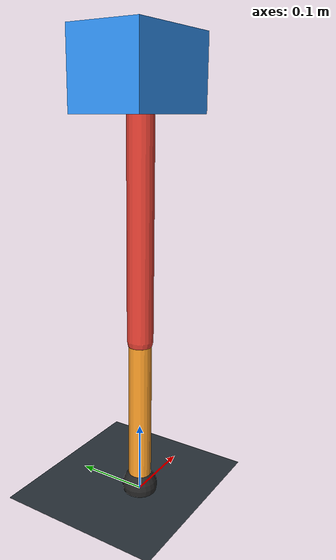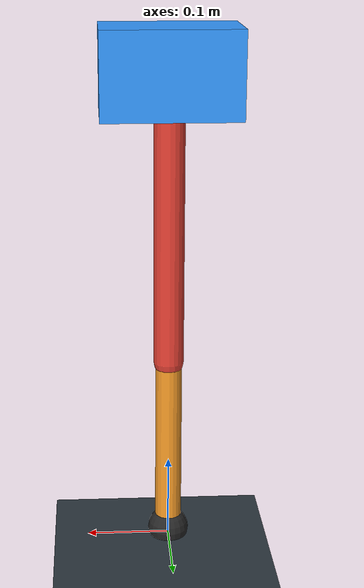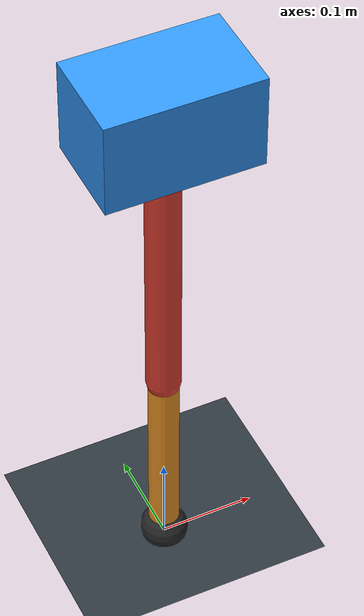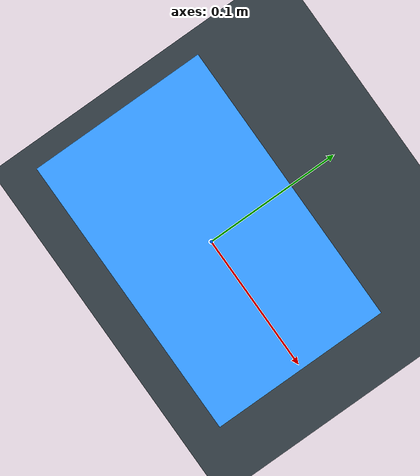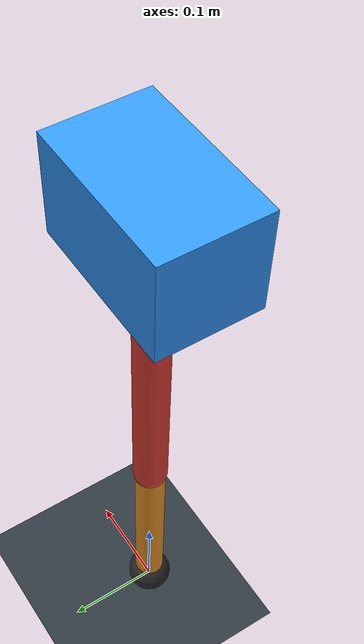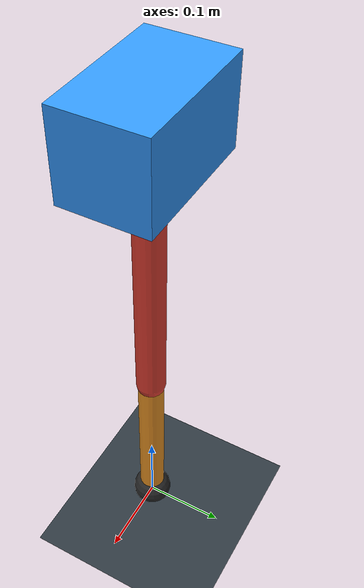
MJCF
<mujoco model="single_axis_two_bar">
  <compiler angle="radian" inertiafromgeom="true"/>
  <option timestep="0.001" integrator="implicitfast" gravity="0 0 -9.81"/>
  <default>
    <joint damping="0.08"/>
    <geom friction="1.2 0.01 0.0001" condim="3"/>
  </default>
  <worldbody>
    <geom name="floor" type="plane" size="5 5 0.1" rgba="0.18 0.22 0.25 1"/>
    <body name="carriage" pos="0 0 0.578345211426328">
      <joint name="pole_slide" type="slide" axis="0 0 1"/>
      <geom name="payload" type="box" size="0.08 0.05 0.05" mass="2.789008031708611" rgba="0.2 0.6 1 1"/>
      <body name="thigh" pos="0 0 0">
        <joint name="hip" type="hinge" axis="0 1 0"/>
        <geom name="thigh_link" type="capsule" fromto="0 0 0 0 0 -0.3481156367507169" size="0.018" mass="0.24803699112718006" rgba="0.9 0.25 0.2 1"/>
        <body name="shank" pos="0 0 -0.3481156367507169">
          <joint name="knee" type="hinge" axis="0 1 0"/>
          <geom name="shank_link" type="capsule" fromto="0 0 0 0 0 -0.2223433441011676" size="0.016" mass="0.15842257068015855" rgba="0.95 0.6 0.15 1"/>
          <geom name="foot" type="sphere" pos="0 0 -0.2223433441011676" size="0.025" mass="0.03" rgba="0.15 0.15 0.15 1"/>
          <site name="toe" pos="0 0 -0.2223433441011676" size="0.008"/>
        </body>
      </body>
    </body>
  </worldbody>
  <actuator>
    <motor name="hip_motor" joint="hip" ctrlrange="-15.646142133405894 15.646142133405894"/>
    <motor name="knee_motor" joint="knee" ctrlrange="-103.51483371968966 103.51483371968966"/>
  </actuator>
</mujoco>
